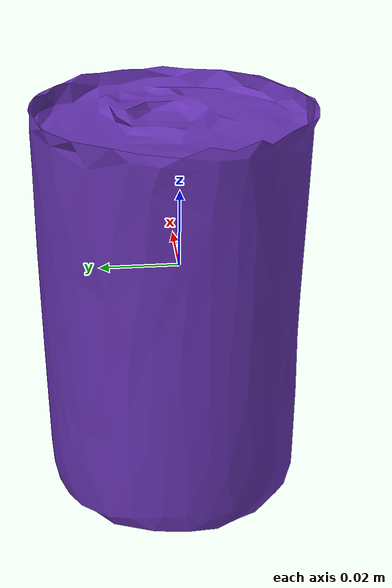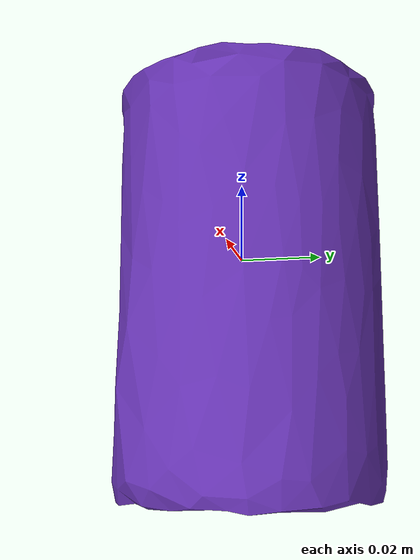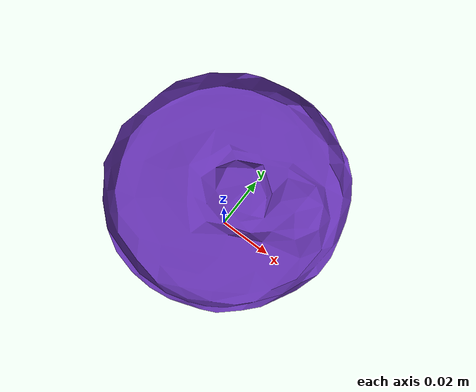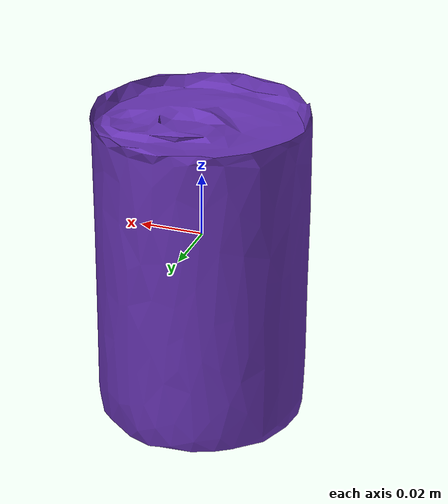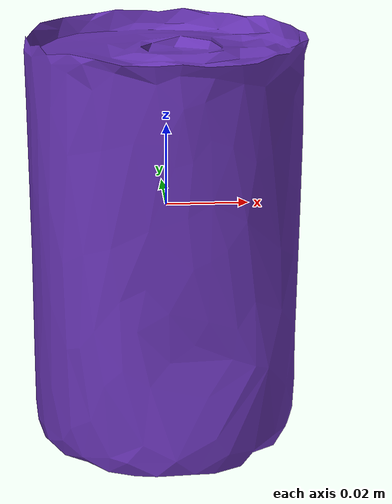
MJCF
<mujoco model="top_watertight_tiny">

  <asset>
    <mesh file="top_watertight_tiny.obj"/>
    <mesh file="top_watertight_tiny_collision_0.obj"/>
    <mesh file="top_watertight_tiny_collision_1.obj"/>
    <mesh file="top_watertight_tiny_collision_2.obj"/>
    <mesh file="top_watertight_tiny_collision_3.obj"/>
    <mesh file="top_watertight_tiny_collision_4.obj"/>
    <mesh file="top_watertight_tiny_collision_5.obj"/>
    <mesh file="top_watertight_tiny_collision_6.obj"/>
    <mesh file="top_watertight_tiny_collision_7.obj"/>
    <mesh file="top_watertight_tiny_collision_8.obj"/>
    <mesh file="top_watertight_tiny_collision_9.obj"/>
    <mesh file="top_watertight_tiny_collision_10.obj"/>
    <mesh file="top_watertight_tiny_collision_11.obj"/>
    <mesh file="top_watertight_tiny_collision_12.obj"/>
    <mesh file="top_watertight_tiny_collision_13.obj"/>
    <mesh file="top_watertight_tiny_collision_14.obj"/>
    <mesh file="top_watertight_tiny_collision_15.obj"/>
    <mesh file="top_watertight_tiny_collision_16.obj"/>
    <mesh file="top_watertight_tiny_collision_17.obj"/>
    <mesh file="top_watertight_tiny_collision_18.obj"/>
    <mesh file="top_watertight_tiny_collision_19.obj"/>
    <mesh file="top_watertight_tiny_collision_20.obj"/>
    <mesh file="top_watertight_tiny_collision_21.obj"/>
    <mesh file="top_watertight_tiny_collision_22.obj"/>
    <mesh file="top_watertight_tiny_collision_23.obj"/>
    <mesh file="top_watertight_tiny_collision_24.obj"/>
    <mesh file="top_watertight_tiny_collision_25.obj"/>
    <mesh file="top_watertight_tiny_collision_26.obj"/>
    <mesh file="top_watertight_tiny_collision_27.obj"/>
    <mesh file="top_watertight_tiny_collision_28.obj"/>
    <mesh file="top_watertight_tiny_collision_29.obj"/>
    <mesh file="top_watertight_tiny_collision_30.obj"/>
  </asset>
  <worldbody>
    <body name="top_watertight_tiny">
      <freejoint/>
      <geom solimp="0.90 0.95 0.001" solref="0.02 1.0" density="100" friction="0.95 0.4 0.3" rgba="0.4 0.2 0.7 1" mesh="top_watertight_tiny" group="2" type="mesh" contype="0" conaffinity="0"/>
      <geom solimp="0.90 0.95 0.001" solref="0.02 1.0" density="100" friction="0.95 0.4 0.3" mesh="top_watertight_tiny_collision_0" rgba="0.7811932011074543 0.6934692122287452 0.2702738938131326 1" group="3" type="mesh"/>
      <geom solimp="0.90 0.95 0.001" solref="0.02 1.0" density="100" friction="0.95 0.4 0.3" mesh="top_watertight_tiny_collision_1" rgba="0.31548968455317705 0.7513800036436091 0.36139869779152245 1" group="3" type="mesh"/>
      <geom solimp="0.90 0.95 0.001" solref="0.02 1.0" density="100" friction="0.95 0.4 0.3" mesh="top_watertight_tiny_collision_2" rgba="0.07148750893228939 0.16317040637399505 0.2454089612527267 1" group="3" type="mesh"/>
      <geom solimp="0.90 0.95 0.001" solref="0.02 1.0" density="100" friction="0.95 0.4 0.3" mesh="top_watertight_tiny_collision_3" rgba="0.80468943964476 0.6136824507027924 0.1661515001454743 1" group="3" type="mesh"/>
      <geom solimp="0.90 0.95 0.001" solref="0.02 1.0" density="100" friction="0.95 0.4 0.3" mesh="top_watertight_tiny_collision_4" rgba="0.31366666192548176 0.7656178377304999 0.5220888523909767 1" group="3" type="mesh"/>
      <geom solimp="0.90 0.95 0.001" solref="0.02 1.0" density="100" friction="0.95 0.4 0.3" mesh="top_watertight_tiny_collision_5" rgba="0.2664482235168941 0.01943805592853587 0.3250772931506495 1" group="3" type="mesh"/>
      <geom solimp="0.90 0.95 0.001" solref="0.02 1.0" density="100" friction="0.95 0.4 0.3" mesh="top_watertight_tiny_collision_6" rgba="0.673475386723914 0.3905757212319416 0.7583708481552525 1" group="3" type="mesh"/>
      <geom solimp="0.90 0.95 0.001" solref="0.02 1.0" density="100" friction="0.95 0.4 0.3" mesh="top_watertight_tiny_collision_7" rgba="0.9165074491470335 0.5674236979320118 0.1761077840865175 1" group="3" type="mesh"/>
      <geom solimp="0.90 0.95 0.001" solref="0.02 1.0" density="100" friction="0.95 0.4 0.3" mesh="top_watertight_tiny_collision_8" rgba="0.34850553240153836 0.4779112611779279 0.6177754680903303 1" group="3" type="mesh"/>
      <geom solimp="0.90 0.95 0.001" solref="0.02 1.0" density="100" friction="0.95 0.4 0.3" mesh="top_watertight_tiny_collision_9" rgba="0.28689955518905863 0.007228996615101013 0.17784583947635668 1" group="3" type="mesh"/>
      <geom solimp="0.90 0.95 0.001" solref="0.02 1.0" density="100" friction="0.95 0.4 0.3" mesh="top_watertight_tiny_collision_10" rgba="0.16693940385008899 0.8551848809571396 0.47728359981714175 1" group="3" type="mesh"/>
      <geom solimp="0.90 0.95 0.001" solref="0.02 1.0" density="100" friction="0.95 0.4 0.3" mesh="top_watertight_tiny_collision_11" rgba="0.15529053620438882 0.14432935805833425 0.014620942418138605 1" group="3" type="mesh"/>
      <geom solimp="0.90 0.95 0.001" solref="0.02 1.0" density="100" friction="0.95 0.4 0.3" mesh="top_watertight_tiny_collision_12" rgba="0.3383769060084504 0.4719806479120263 0.4202944666679642 1" group="3" type="mesh"/>
      <geom solimp="0.90 0.95 0.001" solref="0.02 1.0" density="100" friction="0.95 0.4 0.3" mesh="top_watertight_tiny_collision_13" rgba="0.6150821685088648 0.5895557220832209 0.39717962568550313 1" group="3" type="mesh"/>
      <geom solimp="0.90 0.95 0.001" solref="0.02 1.0" density="100" friction="0.95 0.4 0.3" mesh="top_watertight_tiny_collision_14" rgba="0.6581461944553917 0.4545789889009254 0.49637557165262103 1" group="3" type="mesh"/>
      <geom solimp="0.90 0.95 0.001" solref="0.02 1.0" density="100" friction="0.95 0.4 0.3" mesh="top_watertight_tiny_collision_15" rgba="0.3928267461424483 0.3116572483801663 0.0589273399508814 1" group="3" type="mesh"/>
      <geom solimp="0.90 0.95 0.001" solref="0.02 1.0" density="100" friction="0.95 0.4 0.3" mesh="top_watertight_tiny_collision_16" rgba="0.9700455849693616 0.7344172452071605 0.6939686415020153 1" group="3" type="mesh"/>
      <geom solimp="0.90 0.95 0.001" solref="0.02 1.0" density="100" friction="0.95 0.4 0.3" mesh="top_watertight_tiny_collision_17" rgba="0.5663736525009451 0.6318583214442218 0.939957696561286 1" group="3" type="mesh"/>
      <geom solimp="0.90 0.95 0.001" solref="0.02 1.0" density="100" friction="0.95 0.4 0.3" mesh="top_watertight_tiny_collision_18" rgba="0.28948193322403815 0.8276764303525617 0.6790932711701199 1" group="3" type="mesh"/>
      <geom solimp="0.90 0.95 0.001" solref="0.02 1.0" density="100" friction="0.95 0.4 0.3" mesh="top_watertight_tiny_collision_19" rgba="0.33229858866837314 0.4141491471580778 0.09761427414300683 1" group="3" type="mesh"/>
      <geom solimp="0.90 0.95 0.001" solref="0.02 1.0" density="100" friction="0.95 0.4 0.3" mesh="top_watertight_tiny_collision_20" rgba="0.7400519944059253 0.9169096201362634 0.5251854223076187 1" group="3" type="mesh"/>
      <geom solimp="0.90 0.95 0.001" solref="0.02 1.0" density="100" friction="0.95 0.4 0.3" mesh="top_watertight_tiny_collision_21" rgba="0.2354280951979556 0.47675481298161104 0.9777614728609992 1" group="3" type="mesh"/>
      <geom solimp="0.90 0.95 0.001" solref="0.02 1.0" density="100" friction="0.95 0.4 0.3" mesh="top_watertight_tiny_collision_22" rgba="0.514480212991911 0.7510536638921289 0.9303910556403427 1" group="3" type="mesh"/>
      <geom solimp="0.90 0.95 0.001" solref="0.02 1.0" density="100" friction="0.95 0.4 0.3" mesh="top_watertight_tiny_collision_23" rgba="0.40735974813894316 0.5977689904872289 0.9577085906645793 1" group="3" type="mesh"/>
      <geom solimp="0.90 0.95 0.001" solref="0.02 1.0" density="100" friction="0.95 0.4 0.3" mesh="top_watertight_tiny_collision_24" rgba="0.3981793340522498 0.3189848906993056 0.238392699978482 1" group="3" type="mesh"/>
      <geom solimp="0.90 0.95 0.001" solref="0.02 1.0" density="100" friction="0.95 0.4 0.3" mesh="top_watertight_tiny_collision_25" rgba="0.057018720364134134 0.12571507321564057 0.7685485134517451 1" group="3" type="mesh"/>
      <geom solimp="0.90 0.95 0.001" solref="0.02 1.0" density="100" friction="0.95 0.4 0.3" mesh="top_watertight_tiny_collision_26" rgba="0.22442411295470055 0.7027487173171939 0.49911094541872814 1" group="3" type="mesh"/>
      <geom solimp="0.90 0.95 0.001" solref="0.02 1.0" density="100" friction="0.95 0.4 0.3" mesh="top_watertight_tiny_collision_27" rgba="0.1489489454755656 0.8579998562557134 0.8796352235162125 1" group="3" type="mesh"/>
      <geom solimp="0.90 0.95 0.001" solref="0.02 1.0" density="100" friction="0.95 0.4 0.3" mesh="top_watertight_tiny_collision_28" rgba="0.6301799561335881 0.7504422882535462 0.9531898162927773 1" group="3" type="mesh"/>
      <geom solimp="0.90 0.95 0.001" solref="0.02 1.0" density="100" friction="0.95 0.4 0.3" mesh="top_watertight_tiny_collision_29" rgba="0.8477605300475523 0.8543364934272651 0.36004325235975376 1" group="3" type="mesh"/>
      <geom solimp="0.90 0.95 0.001" solref="0.02 1.0" density="100" friction="0.95 0.4 0.3" mesh="top_watertight_tiny_collision_30" rgba="0.5915206930824887 0.9308574844928356 0.28283106030911787 1" group="3" type="mesh"/>
    </body>
  </worldbody>
</mujoco>
